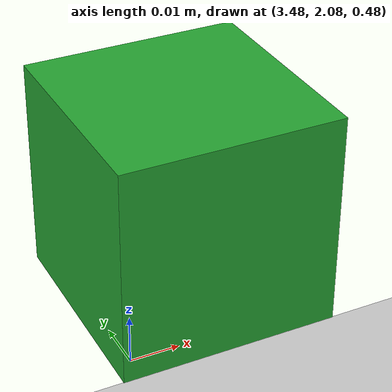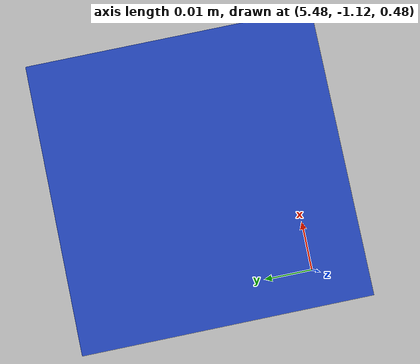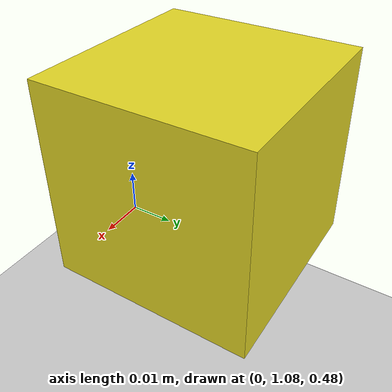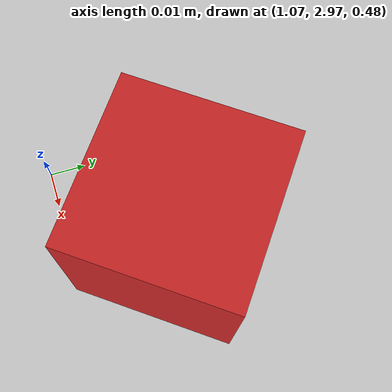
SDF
<sdf version="1.5">
 <world name="default">
  <include><uri>model://ground_plane</uri></include>
  <include><uri>model://sun</uri></include>
  <model name="box1r">
   <pose>1.1 3.0 0.5 0 0 2.5</pose>
   <link name="link">
    <collision name="collision"><geometry><box><size>0.045 0.045 0.045</size></box></geometry></collision>
    <visual name="visual">
     <geometry><box><size>0.045 0.045 0.045</size></box></geometry>
     <material>
      <script><uri>file://media/materials/scripts/gazebo.material</uri><name>Gazebo/RedBright</name></script>
     </material>
    </visual>
   </link>
  </model>
  <model name="box1y">
   <pose>0 1.1 0.5 0 0 0</pose>
   <link name="link">
    <collision name="collision"><geometry><box><size>0.045 0.045 0.045</size></box></geometry></collision>
    <visual name="visual">
     <geometry><box><size>0.045 0.045 0.045</size></box></geometry>
     <material>
      <script><uri>file://media/materials/scripts/gazebo.material</uri><name>Gazebo/Yellow</name></script>
     </material>
    </visual>
   </link>
  </model>
  <model name="box1g">
   <pose>3.5 2.1 0.5 0 0 0</pose>
   <link name="link">
    <collision name="collision"><geometry><box><size>0.045 0.045 0.045</size></box></geometry></collision>
    <visual name="visual">
     <geometry><box><size>0.045 0.045 0.045</size></box></geometry>
     <material>
      <script><uri>file://media/materials/scripts/gazebo.material</uri><name>Gazebo/Green</name></script>
     </material>
    </visual>
   </link>
  </model>
  <model name="box1b">
   <pose>5.5 -1.1 0.5 0 0 0</pose>
   <link name="link">
    <collision name="collision"><geometry><box><size>0.045 0.045 0.045</size></box></geometry></collision>
    <visual name="visual">
     <geometry><box><size>0.045 0.045 0.045</size></box></geometry>
     <material>
      <script><uri>file://media/materials/scripts/gazebo.material</uri><name>Gazebo/Blue</name></script>
     </material>
    </visual>
   </link>
  </model>
 </world>
</sdf>
